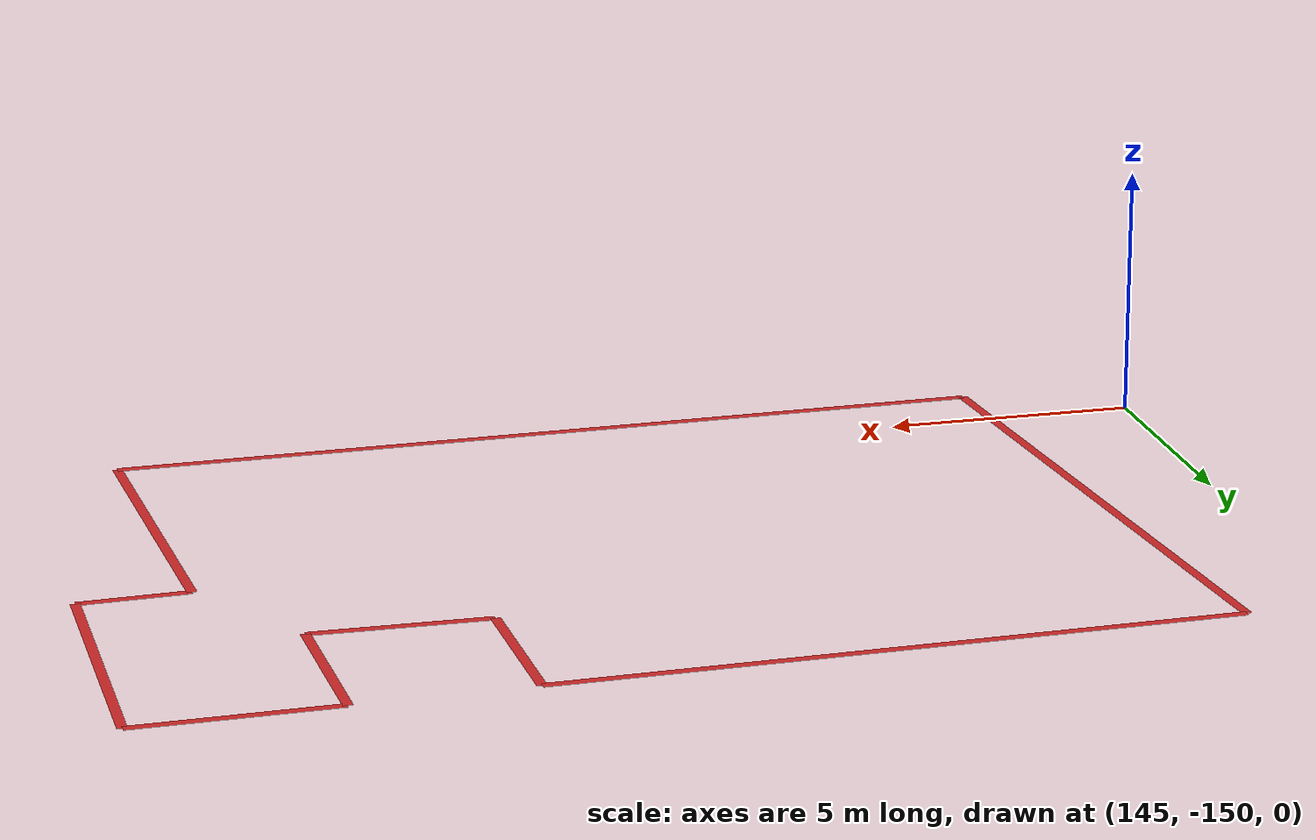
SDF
<sdf version="1.4">
 <world name="default">
  <include><uri>model://sun</uri></include>
  <model name="office_building_150829999">
   <static>true</static>
   <pose>161.587313385 -142.028532435 0.0 0 0 0</pose>
   <link name="office_building_150829999_0">
    <collision name="office_building_150829999_0">
     <geometry><box><size>4.0150590311 0.2 0</size></box></geometry>
    </collision>
    <visual name="office_building_150829999_0">
     <geometry><box><size>4.0150590311 0.2 0</size></box></geometry>
     <material>
      <script><uri>file://media/materials/scripts/gazebo.material</uri><name>Gazebo/Red</name></script>
     </material>
    </visual>
    <pose>4.20052498268 4.37229341148 0 0 0 0.0214587125485</pose>
   </link>
   <link name="office_building_150829999_1">
    <collision name="office_building_150829999_1">
     <geometry><box><size>3.65748920478 0.2 0</size></box></geometry>
    </collision>
    <visual name="office_building_150829999_1">
     <geometry><box><size>3.65748920478 0.2 0</size></box></geometry>
     <material>
      <script><uri>file://media/materials/scripts/gazebo.material</uri><name>Gazebo/Red</name></script>
     </material>
    </visual>
    <pose>2.22130385107 2.50068513484 0 0 0 1.58602385933</pose>
   </link>
   <link name="office_building_150829999_2">
    <collision name="office_building_150829999_2">
     <geometry><box><size>3.53658755553 0.2 0</size></box></geometry>
    </collision>
    <visual name="office_building_150829999_2">
     <geometry><box><size>3.53658755553 0.2 0</size></box></geometry>
     <material>
      <script><uri>file://media/materials/scripts/gazebo.material</uri><name>Gazebo/Red</name></script>
     </material>
    </visual>
    <pose>0.481149861167 0.704374316313 0 0 0 -0.0182229611347</pose>
   </link>
   <link name="office_building_150829999_3">
    <collision name="office_building_150829999_3">
     <geometry><box><size>3.52110619622 0.2 0</size></box></geometry>
    </collision>
    <visual name="office_building_150829999_3">
     <geometry><box><size>3.52110619622 0.2 0</size></box></geometry>
     <material>
      <script><uri>file://media/materials/scripts/gazebo.material</uri><name>Gazebo/Red</name></script>
     </material>
    </visual>
    <pose>-1.30913499875 2.49700813697 0 0 0 -1.55813821759</pose>
   </link>
   <link name="office_building_150829999_4">
    <collision name="office_building_150829999_4">
     <geometry><box><size>13.4130238812 0.2 0</size></box></geometry>
    </collision>
    <visual name="office_building_150829999_4">
     <geometry><box><size>13.4130238812 0.2 0</size></box></geometry>
     <material>
      <script><uri>file://media/materials/scripts/gazebo.material</uri><name>Gazebo/Red</name></script>
     </material>
    </visual>
    <pose>-8.03647016493 4.11741889261 0 0 0 0.0208769433718</pose>
   </link>
   <link name="office_building_150829999_5">
    <collision name="office_building_150829999_5">
     <geometry><box><size>13.5395643021 0.2 0</size></box></geometry>
    </collision>
    <visual name="office_building_150829999_5">
     <geometry><box><size>13.5395643021 0.2 0</size></box></geometry>
     <material>
      <script><uri>file://media/materials/scripts/gazebo.material</uri><name>Gazebo/Red</name></script>
     </material>
    </visual>
    <pose>-14.1520058902 -2.7666481479 0 0 0 1.65798707385</pose>
   </link>
   <link name="office_building_150829999_6">
    <collision name="office_building_150829999_6">
     <geometry><box><size>17.6810533942 0.2 0</size></box></geometry>
    </collision>
    <visual name="office_building_150829999_6">
     <geometry><box><size>17.6810533942 0.2 0</size></box></geometry>
     <material>
      <script><uri>file://media/materials/scripts/gazebo.material</uri><name>Gazebo/Red</name></script>
     </material>
    </visual>
    <pose>-4.72249718921 -9.41366002155 0 0 0 -3.1306141429</pose>
   </link>
   <link name="office_building_150829999_7">
    <collision name="office_building_150829999_7">
     <geometry><box><size>7.28955382891 0.2 0</size></box></geometry>
    </collision>
    <visual name="office_building_150829999_7">
     <geometry><box><size>7.28955382891 0.2 0</size></box></geometry>
     <material>
      <script><uri>file://media/materials/scripts/gazebo.material</uri><name>Gazebo/Red</name></script>
     </material>
    </visual>
    <pose>3.99508224293 -5.673885544 0 0 0 -1.53720372691</pose>
   </link>
   <link name="office_building_150829999_8">
    <collision name="office_building_150829999_8">
     <geometry><box><size>2.20334044571 0.2 0</size></box></geometry>
    </collision>
    <visual name="office_building_150829999_8">
     <geometry><box><size>2.20334044571 0.2 0</size></box></geometry>
     <material>
      <script><uri>file://media/materials/scripts/gazebo.material</uri><name>Gazebo/Red</name></script>
     </material>
    </visual>
    <pose>4.97349635726 -1.98811115096 0 0 0 -3.10250223562</pose>
   </link>
   <link name="office_building_150829999_9">
    <collision name="office_building_150829999_9">
     <geometry><box><size>6.36182246627 0.2 0</size></box></geometry>
    </collision>
    <visual name="office_building_150829999_9">
     <geometry><box><size>6.36182246627 0.2 0</size></box></geometry>
     <material>
      <script><uri>file://media/materials/scripts/gazebo.material</uri><name>Gazebo/Red</name></script>
     </material>
    </visual>
    <pose>6.1409586419 1.23515586799 0 0 0 -1.59174583892</pose>
   </link>
  </model>
 </world>
</sdf>
